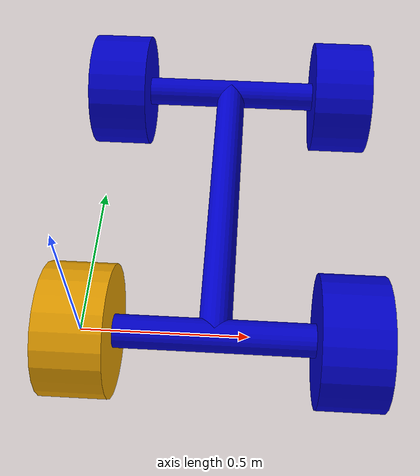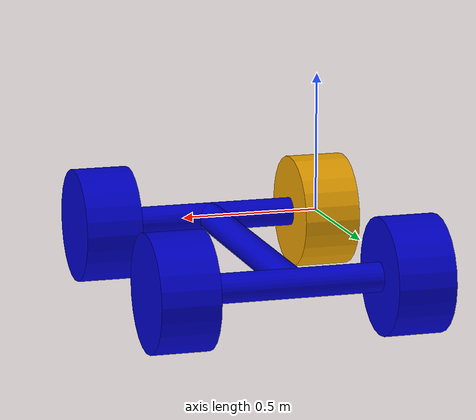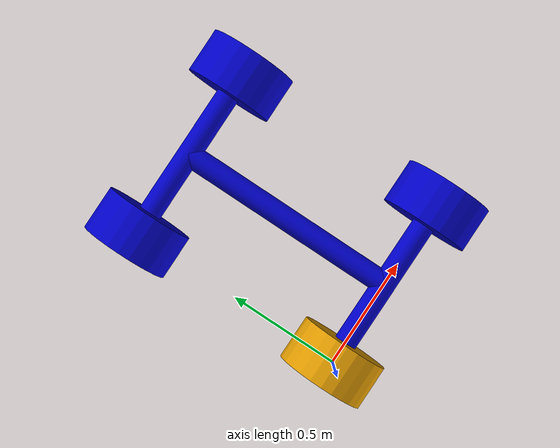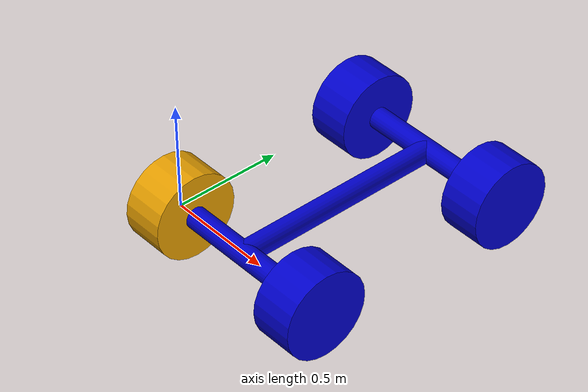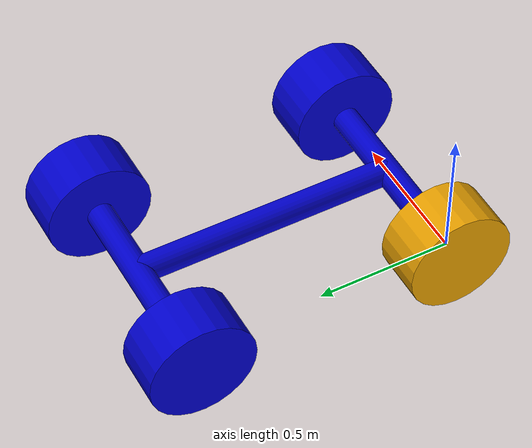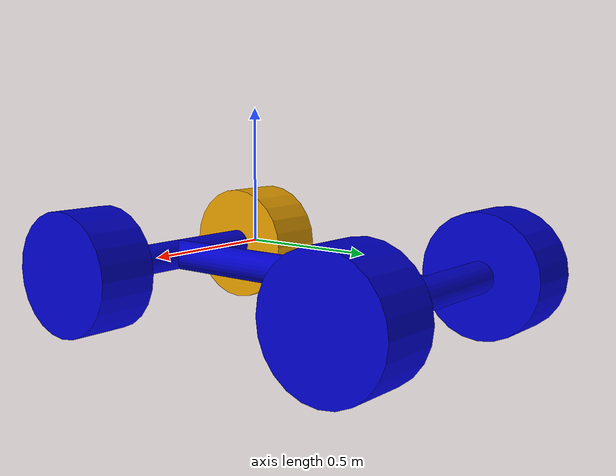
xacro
<?xml version="1.0"?>
<robot name="robot" xmlns:xacro="http://ros.org/wiki/xacro">

  <material name="blue">
    <color rgba="0 0 0.8 1"/>
  </material>

 <xacro:macro name="default_inertial" params="mass">
    <inertial>
      <mass value="${mass}" />
      <inertia ixx="1.0" ixy="0.0" ixz="0.0" iyy="1.0" iyz="0.0" izz="1.0" />
    </inertial>
  </xacro:macro>

  <link name="base_link">
    <visual>
      <origin rpy="0 1.57 0" xyz="0 0 0"/>
      <geometry>
        <cylinder length="0.2" radius="0.2"/>
      </geometry>

    </visual>
<collision>
<geometry>
        <cylinder length="0.2" radius="0.2"/>
      </geometry>
</collision>

  </link>
   <link name="jointer">
    <visual>
      <origin rpy="0 1.57 0" xyz="0 0 0"/>
      <geometry>
        <cylinder length="0.6" radius="0.05"/>
      </geometry>
<material name="blue"/>

    </visual>
<collision>
<geometry>
        <cylinder length="0.6" radius="0.05"/>
      </geometry>
</collision>
<xacro:default_inertial mass="10"/>
  </link>
    <joint name="wheel_to_jointer" type="fixed">
    <parent link="base_link"/>
    <child link="jointer"/>
    <origin xyz="0.4 0 0"/>
  </joint>
  <link name="wheel_2">
    <visual>
<material name="blue"/>
      <origin rpy="0 1.57 0" xyz="0 0 0"/>
      <geometry>
        <cylinder length="0.2" radius="0.2"/>
      </geometry>

    </visual>
<collision>
<geometry>
        <cylinder length="0.2" radius="0.2"/>
      </geometry>
</collision>

<xacro:default_inertial mass="10"/>
  </link>
  <joint name="wheel2_to_jointer" type="fixed">
    <parent link="jointer"/>
    <child link="wheel_2"/>
    <origin xyz="0.4 0 0"/>
  </joint>
  <link name="jointer2">
    <visual>
<material name="blue"/>
      <origin rpy="1.57 1.57 0" xyz="0 0 0"/>
      <geometry>
        <cylinder length="1" radius="0.05"/>
      </geometry>

    </visual>
    <collision>
<geometry>
        <cylinder length="1" radius="0.05"/>
      </geometry>
</collision>
<xacro:default_inertial mass="10"/>
  </link>
   <joint name="jointer_to_jointer" type="fixed">
    <parent link="jointer"/>
    <child link="jointer2"/>
    <origin xyz="0 0.5 0"/>
  </joint>
   <link name="jointer3">
    <visual>
<material name="blue"/>
      <origin rpy="0 1.57 0" xyz="0 0 0"/>
      <geometry>
        <cylinder length="0.6" radius="0.05"/>
      </geometry>

    </visual>
    <collision>
<geometry>
        <cylinder length="0.6" radius="0.05"/>
      </geometry>
</collision>
<xacro:default_inertial mass="10"/>
  </link>
   <joint name="jointer1_to_jointer2" type="fixed">
    <parent link="jointer2"/>
    <child link="jointer3"/>
    <origin xyz="0 0.5 0"/>
  </joint>
  <link name="wheel_3">
    <visual>
<material name="blue"/>
      <origin rpy="0 1.57 0" xyz="0 0 0"/>
      <geometry>
        <cylinder length="0.2" radius="0.2"/>
      </geometry>

    </visual>
<collision>
<geometry>
        <cylinder length="0.2" radius="0.2"/>
      </geometry>
</collision>

<xacro:default_inertial mass="10"/>
  </link>
   <joint name="wheel3_to_jointer3" type="fixed">
    <parent link="jointer3"/>
    <child link="wheel_3"/>
    <origin xyz="0.4 0 0"/>
  </joint>
   <link name="wheel_4">
    <visual>
<material name="blue"/>
      <origin rpy="0 1.57 0" xyz="0 0 0"/>
      <geometry>
        <cylinder length="0.2" radius="0.2"/>
      </geometry>

    </visual>
<collision>
<geometry>
        <cylinder length="0.2" radius="0.2"/>
      </geometry>
</collision>

<xacro:default_inertial mass="10"/>
  </link>
 <joint name="wheel4_to_jointer3" type="fixed">
    <parent link="jointer3"/>
    <child link="wheel_4"/>
    <origin xyz="-0.4 0 0"/>
  </joint>
</robot>
